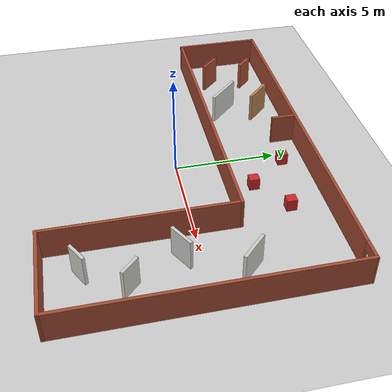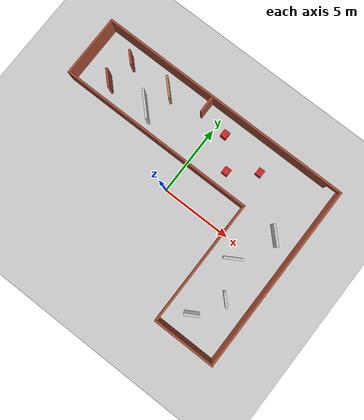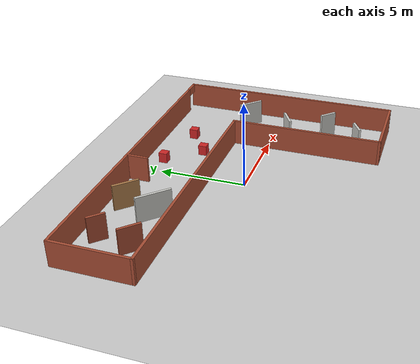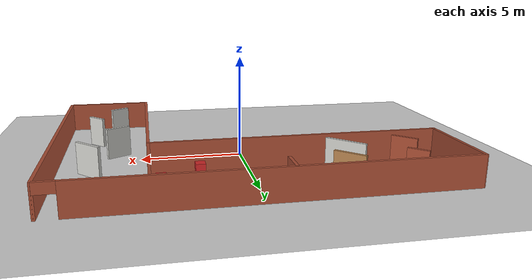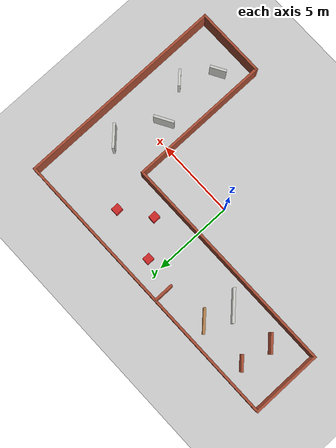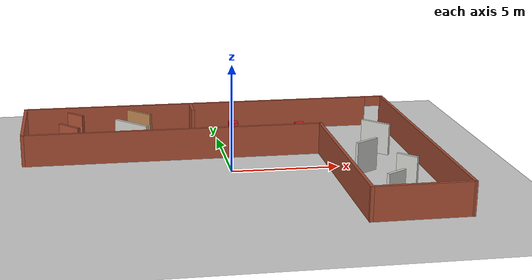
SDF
<sdf version="1.7">
 <world name="default">
  <light name="sun" type="directional">
   <pose>0 0 10 0 -0 0</pose>
   <diffuse>0.8 0.8 0.8 1</diffuse>
   <specular>0.2 0.2 0.2 1</specular>
   <attenuation>
    <range>1000</range>
    <constant>0.9</constant>
    <linear>0.01</linear>
    <quadratic>0.001</quadratic>
   </attenuation>
   <direction>-0.5 0.1 -0.9</direction>
   <spot><inner_angle>0</inner_angle><outer_angle>0</outer_angle><falloff>0</falloff></spot>
  </light>
  <model name="ground_plane">
   <static>1</static>
   <link name="link">
    <collision name="collision">
     <geometry><plane><normal>0 0 1</normal><size>100 100</size></plane></geometry>
     <surface>
      <contact><collide_bitmask>65535</collide_bitmask></contact>
      <friction><ode><mu>100</mu><mu2>50</mu2></ode></friction>
     </surface>
    </collision>
    <visual name="visual">
     <cast_shadows>0</cast_shadows>
     <geometry><plane><normal>0 0 1</normal><size>100 100</size></plane></geometry>
     <material>
      <script><uri>file://media/materials/scripts/gazebo.material</uri><name>Gazebo/Grey</name></script>
     </material>
    </visual>
   </link>
  </model>
  <gravity>0 0 -9.8</gravity>
  <magnetic_field>6e-06 2.3e-05 -4.2e-05</magnetic_field>
  <atmosphere type="adiabatic"/>
  <physics type="ode">
   <max_step_size>0.001</max_step_size>
   <real_time_factor>1</real_time_factor>
   <real_time_update_rate>1000</real_time_update_rate>
  </physics>
  <scene><ambient>0.4 0.4 0.4 1</ambient><background>0.7 0.7 0.7 1</background><shadows>1</shadows></scene>
  <spherical_coordinates>
   <surface_model>EARTH_WGS84</surface_model>
   <latitude_deg>0</latitude_deg>
   <longitude_deg>0</longitude_deg>
   <elevation>0</elevation>
   <heading_deg>0</heading_deg>
  </spherical_coordinates>
  <model name="maze">
   <pose>-0.260275 -0.118522 -1 0 -0 0</pose>
   <link name="Wall_11">
    <collision name="Wall_11_Collision">
     <geometry><box><size>1 0.15 2.5</size></box></geometry>
     <pose>0 0 1.25 0 -0 0</pose>
    </collision>
    <visual name="Wall_11_Visual">
     <pose>0 0 1.25 0 -0 0</pose>
     <geometry><box><size>1 0.15 2.5</size></box></geometry>
     <material>
      <script><uri>file://media/materials/scripts/gazebo.material</uri><name>Gazebo/CeilingTiled</name></script>
      <ambient>1 1 1 1</ambient>
     </material>
     <meta><layer>0</layer></meta>
    </visual>
    <pose>6.3918 -5.02139 0 0 -0 0.523599</pose>
   </link>
   <link name="Wall_13">
    <collision name="Wall_13_Collision">
     <geometry><box><size>1 0.15 2.5</size></box></geometry>
     <pose>0 0 1.25 0 -0 0</pose>
    </collision>
    <visual name="Wall_13_Visual">
     <pose>0 0 1.25 0 -0 0</pose>
     <geometry><box><size>1 0.15 2.5</size></box></geometry>
     <material>
      <script><uri>file://media/materials/scripts/gazebo.material</uri><name>Gazebo/CeilingTiled</name></script>
      <ambient>1 1 1 1</ambient>
     </material>
     <meta><layer>0</layer></meta>
    </visual>
    <pose>7.52127 -3.03399 0 0 -0 -0.785398</pose>
   </link>
   <link name="Wall_15">
    <collision name="Wall_15_Collision">
     <geometry><box><size>1.25 0.15 2.5</size></box></geometry>
     <pose>0 0 1.25 0 -0 0</pose>
    </collision>
    <visual name="Wall_15_Visual">
     <pose>0 0 1.25 0 -0 0</pose>
     <geometry><box><size>1.25 0.15 2.5</size></box></geometry>
     <material>
      <script><uri>file://media/materials/scripts/gazebo.material</uri><name>Gazebo/CeilingTiled</name></script>
      <ambient>1 1 1 1</ambient>
     </material>
     <meta><layer>0</layer></meta>
    </visual>
    <pose>6.34045 -0.729457 0 0 -0 0.523599</pose>
   </link>
   <link name="Wall_17">
    <collision name="Wall_17_Collision">
     <geometry><box><size>1.5 0.15 2.5</size></box></geometry>
     <pose>0 0 1.25 0 -0 0</pose>
    </collision>
    <visual name="Wall_17_Visual">
     <pose>0 0 1.25 0 -0 0</pose>
     <geometry><box><size>1.5 0.15 2.5</size></box></geometry>
     <material>
      <script><uri>file://media/materials/scripts/gazebo.material</uri><name>Gazebo/CeilingTiled</name></script>
      <ambient>1 1 1 1</ambient>
     </material>
     <meta><layer>0</layer></meta>
    </visual>
    <pose>7.56806 2.02646 0 0 -0 2.35619</pose>
   </link>
   <link name="Wall_19">
    <collision name="Wall_19_Collision">
     <geometry><box><size>1 0.15 2.5</size></box></geometry>
     <pose>0 0 1.25 0 -0 0</pose>
    </collision>
    <visual name="Wall_19_Visual">
     <pose>0 0 1.25 0 -0 0</pose>
     <geometry><box><size>1 0.15 2.5</size></box></geometry>
     <material>
      <script><uri>file://media/materials/scripts/gazebo.material</uri><name>Gazebo/Bricks</name></script>
      <ambient>1 1 1 1</ambient>
     </material>
     <meta><layer>0</layer></meta>
    </visual>
    <pose>-6.73644 5.42487 0 0 -0 -0.785398</pose>
   </link>
   <link name="Wall_23">
    <collision name="Wall_23_Collision">
     <geometry><box><size>1.25 0.15 2.5</size></box></geometry>
     <pose>0 0 1.25 0 -0 0</pose>
    </collision>
    <visual name="Wall_23_Visual">
     <pose>0 0 1.25 0 -0 0</pose>
     <geometry><box><size>1.25 0.15 2.5</size></box></geometry>
     <material>
      <script><uri>file://media/materials/scripts/gazebo.material</uri><name>Gazebo/Bricks</name></script>
      <ambient>1 1 1 1</ambient>
     </material>
     <meta><layer>0</layer></meta>
    </visual>
    <pose>-7.04705 3.47447 0 0 -0 -0.785398</pose>
   </link>
   <link name="Wall_25">
    <collision name="Wall_25_Collision">
     <geometry><box><size>1.5 0.15 2.5</size></box></geometry>
     <pose>0 0 1.25 0 -0 0</pose>
    </collision>
    <visual name="Wall_25_Visual">
     <pose>0 0 1.25 0 -0 0</pose>
     <geometry><box><size>1.5 0.15 2.5</size></box></geometry>
     <material>
      <script><uri>file://media/materials/scripts/gazebo.material</uri><name>Gazebo/Wood</name></script>
      <ambient>1 1 1 1</ambient>
     </material>
     <meta><layer>0</layer></meta>
    </visual>
    <pose>-3.60704 5.3811 0 0 -0 -0.785398</pose>
   </link>
   <link name="Wall_28">
    <collision name="Wall_28_Collision">
     <geometry><box><size>2 0.15 2.5</size></box></geometry>
     <pose>0 0 1.25 0 -0 0</pose>
    </collision>
    <visual name="Wall_28_Visual">
     <pose>0 0 1.25 0 -0 0</pose>
     <geometry><box><size>2 0.15 2.5</size></box></geometry>
     <material>
      <script><uri>file://media/materials/scripts/gazebo.material</uri><name>Gazebo/CeilingTiled</name></script>
      <ambient>1 1 1 1</ambient>
     </material>
     <meta><layer>0</layer></meta>
    </visual>
    <pose>-4.09527 3.58171 0 0 -0 -0.785398</pose>
   </link>
   <link name="Wall_30">
    <collision name="Wall_30_Collision">
     <geometry><box><size>1.25 0.15 2.5</size></box></geometry>
     <pose>0 0 1.25 0 -0 0</pose>
    </collision>
    <visual name="Wall_30_Visual">
     <pose>0 0 1.25 0 -0 0</pose>
     <geometry><box><size>1.25 0.15 2.5</size></box></geometry>
     <material>
      <script><uri>file://media/materials/scripts/gazebo.material</uri><name>Gazebo/Bricks</name></script>
      <ambient>1 1 1 1</ambient>
     </material>
     <meta><layer>0</layer></meta>
    </visual>
    <pose>-0.918914 5.9734 0 0 -0 -1.5708</pose>
   </link>
   <link name="Wall_4">
    <pose>0.010024 6.6032 0 0 -0 0</pose>
    <visual name="Wall_4_Visual_0">
     <pose>-0.486533 0 1.25 0 -0 0</pose>
     <geometry><box><size>17.5269 0.15 2.5</size></box></geometry>
     <material>
      <script><uri>file://media/materials/scripts/gazebo.material</uri><name>Gazebo/Bricks</name></script>
      <ambient>1 1 1 1</ambient>
     </material>
     <meta><layer>0</layer></meta>
    </visual>
    <collision name="Wall_4_Collision_0">
     <geometry><box><size>17.5269 0.15 2.5</size></box></geometry>
     <pose>-0.486533 0 1.25 0 -0 0</pose>
    </collision>
    <visual name="Wall_4_Visual_1">
     <pose>9.21347 0 1.25 0 -0 0</pose>
     <geometry><box><size>0.073066 0.15 2.5</size></box></geometry>
     <material>
      <script><uri>file://media/materials/scripts/gazebo.material</uri><name>Gazebo/Bricks</name></script>
      <ambient>1 1 1 1</ambient>
     </material>
     <meta><layer>0</layer></meta>
    </visual>
    <collision name="Wall_4_Collision_1">
     <geometry><box><size>0.073066 0.15 2.5</size></box></geometry>
     <pose>9.21347 0 1.25 0 -0 0</pose>
    </collision>
    <visual name="Wall_4_Visual_2">
     <pose>8.72693 0 2.25 0 -0 0</pose>
     <geometry><box><size>0.9 0.15 0.5</size></box></geometry>
     <material>
      <script><uri>file://media/materials/scripts/gazebo.material</uri><name>Gazebo/Bricks</name></script>
      <ambient>1 1 1 1</ambient>
     </material>
     <meta><layer>0</layer></meta>
    </visual>
    <collision name="Wall_4_Collision_2">
     <geometry><box><size>0.9 0.15 0.5</size></box></geometry>
     <pose>8.72693 0 2.25 0 -0 0</pose>
    </collision>
   </link>
   <link name="Wall_5">
    <collision name="Wall_5_Collision">
     <geometry><box><size>13.3564 0.15 2.5</size></box></geometry>
     <pose>0 0 1.25 0 -0 0</pose>
    </collision>
    <visual name="Wall_5_Visual">
     <pose>0 0 1.25 0 -0 0</pose>
     <geometry><box><size>13.3564 0.15 2.5</size></box></geometry>
     <material>
      <script><uri>file://media/materials/scripts/gazebo.material</uri><name>Gazebo/Bricks</name></script>
      <ambient>1 1 1 1</ambient>
     </material>
     <meta><layer>0</layer></meta>
    </visual>
    <pose>9.19833 -0 0 0 -0 -1.56878</pose>
   </link>
   <link name="Wall_6">
    <collision name="Wall_6_Collision">
     <geometry><box><size>4.4734 0.15 2.5</size></box></geometry>
     <pose>0 0 1.25 0 -0 0</pose>
    </collision>
    <visual name="Wall_6_Visual">
     <pose>0 0 1.25 0 -0 0</pose>
     <geometry><box><size>4.4734 0.15 2.5</size></box></geometry>
     <material>
      <script><uri>file://media/materials/scripts/gazebo.material</uri><name>Gazebo/Bricks</name></script>
      <ambient>1 1 1 1</ambient>
     </material>
     <meta><layer>0</layer></meta>
    </visual>
    <pose>7.04992 -6.6032 0 0 -0 3.14159</pose>
   </link>
   <link name="Wall_7">
    <collision name="Wall_7_Collision">
     <geometry><box><size>9 0.15 2.5</size></box></geometry>
     <pose>0 0 1.25 0 -0 0</pose>
    </collision>
    <visual name="Wall_7_Visual">
     <pose>0 0 1.25 0 -0 0</pose>
     <geometry><box><size>9 0.15 2.5</size></box></geometry>
     <material>
      <script><uri>file://media/materials/scripts/gazebo.material</uri><name>Gazebo/Bricks</name></script>
      <ambient>1 1 1 1</ambient>
     </material>
     <meta><layer>0</layer></meta>
    </visual>
    <pose>4.88823 -2.1782 0 0 -0 1.5708</pose>
   </link>
   <link name="Wall_8">
    <collision name="Wall_8_Collision">
     <geometry><box><size>14.25 0.15 2.5</size></box></geometry>
     <pose>0 0 1.25 0 -0 0</pose>
    </collision>
    <visual name="Wall_8_Visual">
     <pose>0 0 1.25 0 -0 0</pose>
     <geometry><box><size>14.25 0.15 2.5</size></box></geometry>
     <material>
      <script><uri>file://media/materials/scripts/gazebo.material</uri><name>Gazebo/Bricks</name></script>
      <ambient>1 1 1 1</ambient>
     </material>
     <meta><layer>0</layer></meta>
    </visual>
    <pose>-2.16178 2.2468 0 0 -0 3.14159</pose>
   </link>
   <link name="Wall_9">
    <collision name="Wall_9_Collision">
     <geometry><box><size>4.5 0.15 2.5</size></box></geometry>
     <pose>0 0 1.25 0 -0 0</pose>
    </collision>
    <visual name="Wall_9_Visual">
     <pose>0 0 1.25 0 -0 0</pose>
     <geometry><box><size>4.5 0.15 2.5</size></box></geometry>
     <material>
      <script><uri>file://media/materials/scripts/gazebo.material</uri><name>Gazebo/Bricks</name></script>
      <ambient>1 1 1 1</ambient>
     </material>
     <meta><layer>0</layer></meta>
    </visual>
    <pose>-9.21177 4.4218 0 0 -0 1.5708</pose>
   </link>
   <static>1</static>
  </model>
  <model name="unit_box">
   <link name="link">
    <inertial>
     <mass>1</mass>
     <inertia>
      <ixx>0.166667</ixx>
      <ixy>0</ixy>
      <ixz>0</ixz>
      <iyy>0.166667</iyy>
      <iyz>0</iyz>
      <izz>0.166667</izz>
     </inertia>
    </inertial>
    <visual name="visual">
     <geometry><box><size>0.451447 0.491274 0.601165</size></box></geometry>
     <material>
      <script><name>Gazebo/Red</name><uri>file://media/materials/scripts/gazebo.material</uri></script>
      <shader type="pixel"><normal_map>__default__</normal_map></shader>
      <ambient>1 0 0 1</ambient>
      <diffuse>1 0 0 1</diffuse>
      <specular>0.1 0.1 0.1 1</specular>
      <emissive>0 0 0 1</emissive>
     </material>
    </visual>
    <collision name="collision">
     <geometry><box><size>0.451447 0.491274 0.601165</size></box></geometry>
     <surface>
      <friction>
       <ode><mu>1</mu><mu2>1</mu2><fdir1>0 0 0</fdir1><slip1>0</slip1><slip2>0</slip2></ode>
       <torsional>
        <coefficient>1</coefficient>
        <patch_radius>0</patch_radius>
        <surface_radius>0</surface_radius>
        <use_patch_radius>1</use_patch_radius>
        <ode><slip>0</slip></ode>
       </torsional>
      </friction>
      <bounce><restitution_coefficient>0</restitution_coefficient><threshold>1e+06</threshold></bounce>
      <contact>
       <collide_without_contact>0</collide_without_contact>
       <collide_without_contact_bitmask>1</collide_without_contact_bitmask>
       <collide_bitmask>1</collide_bitmask>
       <ode>
        <soft_cfm>0</soft_cfm>
        <soft_erp>0.2</soft_erp>
        <kp>1e+13</kp>
        <kd>1</kd>
        <max_vel>0.01</max_vel>
        <min_depth>0</min_depth>
       </ode>
       <bullet>
        <split_impulse>1</split_impulse>
        <split_impulse_penetration_threshold>-0.01</split_impulse_penetration_threshold>
        <soft_cfm>0</soft_cfm>
        <soft_erp>0.2</soft_erp>
        <kp>1e+13</kp>
        <kd>1</kd>
       </bullet>
      </contact>
     </surface>
    </collision>
   </link>
   <static>0</static>
   <pose>4.14865 4.57109 0.499995 -1e-05 0 0</pose>
  </model>
  <model name="unit_box_clone">
   <link name="link">
    <inertial>
     <mass>1</mass>
     <inertia>
      <ixx>0.166667</ixx>
      <ixy>0</ixy>
      <ixz>0</ixz>
      <iyy>0.166667</iyy>
      <iyz>0</iyz>
      <izz>0.166667</izz>
     </inertia>
    </inertial>
    <visual name="visual">
     <geometry><box><size>0.451447 0.491274 0.601165</size></box></geometry>
     <material>
      <script><name>Gazebo/Red</name><uri>file://media/materials/scripts/gazebo.material</uri></script>
      <shader type="pixel"><normal_map>__default__</normal_map></shader>
      <ambient>1 0 0 1</ambient>
      <diffuse>1 0 0 1</diffuse>
      <specular>0.1 0.1 0.1 1</specular>
      <emissive>0 0 0 1</emissive>
     </material>
    </visual>
    <collision name="collision">
     <geometry><box><size>0.451447 0.491274 0.601165</size></box></geometry>
     <surface>
      <friction>
       <ode><mu>1</mu><mu2>1</mu2><fdir1>0 0 0</fdir1><slip1>0</slip1><slip2>0</slip2></ode>
       <torsional>
        <coefficient>1</coefficient>
        <patch_radius>0</patch_radius>
        <surface_radius>0</surface_radius>
        <use_patch_radius>1</use_patch_radius>
        <ode><slip>0</slip></ode>
       </torsional>
      </friction>
      <bounce><restitution_coefficient>0</restitution_coefficient><threshold>1e+06</threshold></bounce>
      <contact>
       <collide_without_contact>0</collide_without_contact>
       <collide_without_contact_bitmask>1</collide_without_contact_bitmask>
       <collide_bitmask>1</collide_bitmask>
       <ode>
        <soft_cfm>0</soft_cfm>
        <soft_erp>0.2</soft_erp>
        <kp>1e+13</kp>
        <kd>1</kd>
        <max_vel>0.01</max_vel>
        <min_depth>0</min_depth>
       </ode>
       <bullet>
        <split_impulse>1</split_impulse>
        <split_impulse_penetration_threshold>-0.01</split_impulse_penetration_threshold>
        <soft_cfm>0</soft_cfm>
        <soft_erp>0.2</soft_erp>
        <kp>1e+13</kp>
        <kd>1</kd>
       </bullet>
      </contact>
     </surface>
    </collision>
   </link>
   <static>0</static>
   <pose>2.37935 3.31016 0.499995 -1e-05 0 0</pose>
  </model>
  <model name="unit_box_clone_0">
   <link name="link">
    <inertial>
     <mass>1</mass>
     <inertia>
      <ixx>0.166667</ixx>
      <ixy>0</ixy>
      <ixz>0</ixz>
      <iyy>0.166667</iyy>
      <iyz>0</iyz>
      <izz>0.166667</izz>
     </inertia>
    </inertial>
    <visual name="visual">
     <geometry><box><size>0.451447 0.491274 0.601165</size></box></geometry>
     <material>
      <script><name>Gazebo/Red</name><uri>file://media/materials/scripts/gazebo.material</uri></script>
      <shader type="pixel"><normal_map>__default__</normal_map></shader>
      <ambient>1 0 0 1</ambient>
      <diffuse>1 0 0 1</diffuse>
      <specular>0.1 0.1 0.1 1</specular>
      <emissive>0 0 0 1</emissive>
     </material>
    </visual>
    <collision name="collision">
     <geometry><box><size>0.451447 0.491274 0.601165</size></box></geometry>
     <surface>
      <friction>
       <ode><mu>1</mu><mu2>1</mu2><fdir1>0 0 0</fdir1><slip1>0</slip1><slip2>0</slip2></ode>
       <torsional>
        <coefficient>1</coefficient>
        <patch_radius>0</patch_radius>
        <surface_radius>0</surface_radius>
        <use_patch_radius>1</use_patch_radius>
        <ode><slip>0</slip></ode>
       </torsional>
      </friction>
      <bounce><restitution_coefficient>0</restitution_coefficient><threshold>1e+06</threshold></bounce>
      <contact>
       <collide_without_contact>0</collide_without_contact>
       <collide_without_contact_bitmask>1</collide_without_contact_bitmask>
       <collide_bitmask>1</collide_bitmask>
       <ode>
        <soft_cfm>0</soft_cfm>
        <soft_erp>0.2</soft_erp>
        <kp>1e+13</kp>
        <kd>1</kd>
        <max_vel>0.01</max_vel>
        <min_depth>0</min_depth>
       </ode>
       <bullet>
        <split_impulse>1</split_impulse>
        <split_impulse_penetration_threshold>-0.01</split_impulse_penetration_threshold>
        <soft_cfm>0</soft_cfm>
        <soft_erp>0.2</soft_erp>
        <kp>1e+13</kp>
        <kd>1</kd>
       </bullet>
      </contact>
     </surface>
    </collision>
   </link>
   <static>0</static>
   <pose>0.848347 5.17816 0.499995 -1e-05 0 0</pose>
  </model>
 </world>
</sdf>
